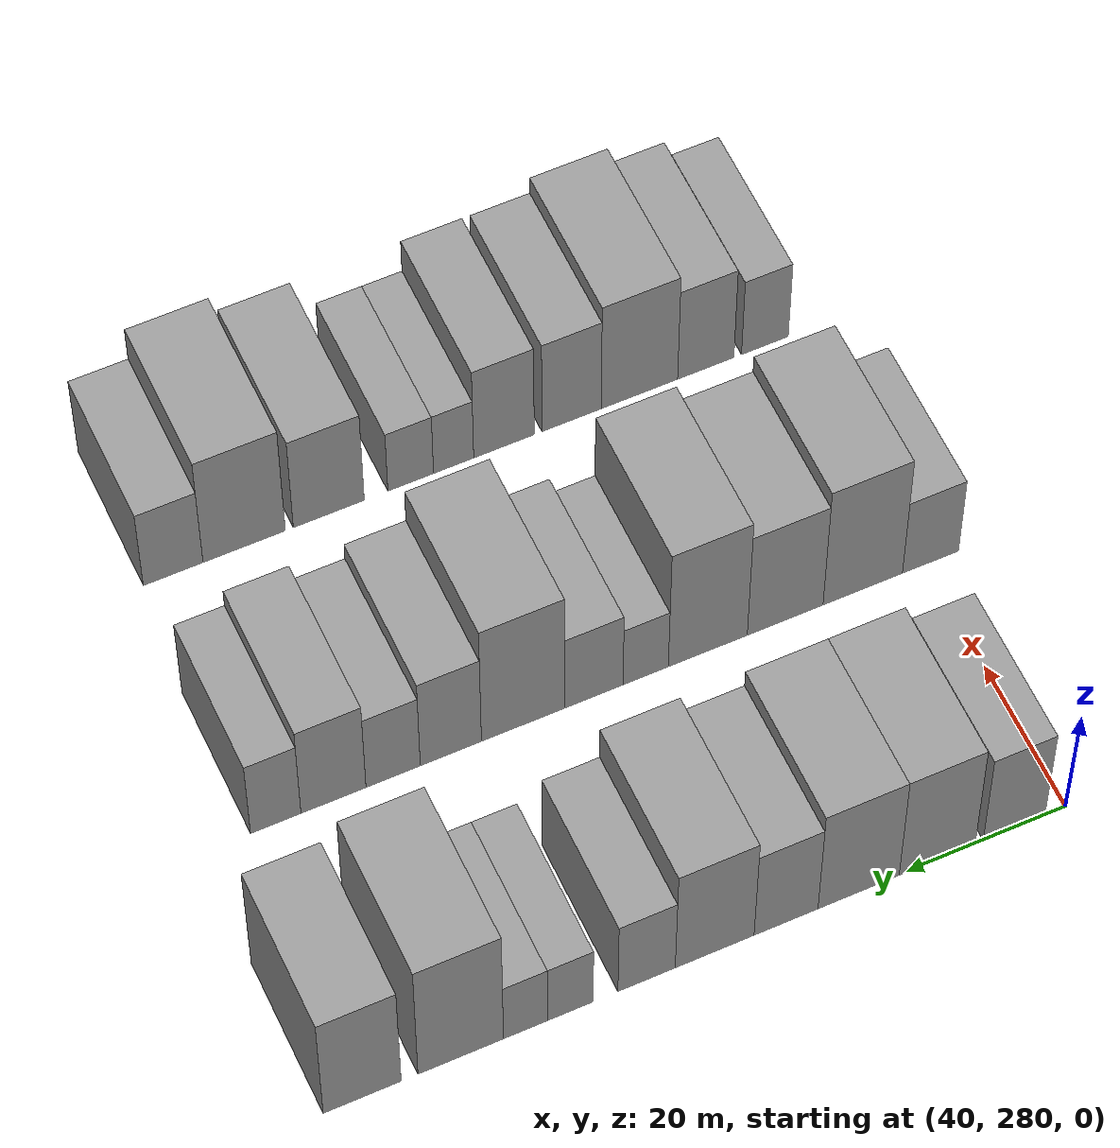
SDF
<sdf version="1.6">
 <world name="default">
  <model name="building_69">
   <static>1</static>
   <pose>50.0000 286.6164 0 0.000000 0.000000 0.000000</pose>
   <link name="link">
    <pose>0 0 9.00 0 0 0</pose>
    <collision name="collision"><geometry><box><size>20.0000 7.7567 18.0000</size></box></geometry></collision>
    <visual name="visual">
     <cast_shadows>0</cast_shadows>
     <geometry><box><size>20.0000 7.7567 18.0000</size></box></geometry>
     <material>
      <script>
       <uri>model://grey_wall/materials/scripts</uri>
       <uri>model://grey_wall/materials/textures</uri>
       <name>vrc/grey_wall</name>
      </script>
     </material>
    </visual>
   </link>
  </model>
  <model name="building_70">
   <static>1</static>
   <pose>50.0000 296.2404 0 0.000000 0.000000 0.000000</pose>
   <link name="link">
    <pose>0 0 10.50 0 0 0</pose>
    <collision name="collision"><geometry><box><size>20.0000 9.4913 21.0000</size></box></geometry></collision>
    <visual name="visual">
     <cast_shadows>0</cast_shadows>
     <geometry><box><size>20.0000 9.4913 21.0000</size></box></geometry>
     <material>
      <script>
       <uri>model://grey_wall/materials/scripts</uri>
       <uri>model://grey_wall/materials/textures</uri>
       <name>vrc/grey_wall</name>
      </script>
     </material>
    </visual>
   </link>
  </model>
  <model name="building_71">
   <static>1</static>
   <pose>50.0000 306.0205 0 0.000000 0.000000 0.000000</pose>
   <link name="link">
    <pose>0 0 10.50 0 0 0</pose>
    <collision name="collision"><geometry><box><size>20.0000 10.0688 21.0000</size></box></geometry></collision>
    <visual name="visual">
     <cast_shadows>0</cast_shadows>
     <geometry><box><size>20.0000 10.0688 21.0000</size></box></geometry>
     <material>
      <script>
       <uri>model://grey_wall/materials/scripts</uri>
       <uri>model://grey_wall/materials/textures</uri>
       <name>vrc/grey_wall</name>
      </script>
     </material>
    </visual>
   </link>
  </model>
  <model name="building_72">
   <static>1</static>
   <pose>50.0000 314.9891 0 0.000000 0.000000 0.000000</pose>
   <link name="link">
    <pose>0 0 9.00 0 0 0</pose>
    <collision name="collision"><geometry><box><size>20.0000 7.8686 18.0000</size></box></geometry></collision>
    <visual name="visual">
     <cast_shadows>0</cast_shadows>
     <geometry><box><size>20.0000 7.8686 18.0000</size></box></geometry>
     <material>
      <script>
       <uri>model://grey_wall/materials/scripts</uri>
       <uri>model://grey_wall/materials/textures</uri>
       <name>vrc/grey_wall</name>
      </script>
     </material>
    </visual>
   </link>
  </model>
  <model name="building_73">
   <static>1</static>
   <pose>50.0000 323.7444 0 0.000000 0.000000 0.000000</pose>
   <link name="link">
    <pose>0 0 10.50 0 0 0</pose>
    <collision name="collision"><geometry><box><size>20.0000 9.6419 21.0000</size></box></geometry></collision>
    <visual name="visual">
     <cast_shadows>0</cast_shadows>
     <geometry><box><size>20.0000 9.6419 21.0000</size></box></geometry>
     <material>
      <script>
       <uri>model://grey_wall/materials/scripts</uri>
       <uri>model://grey_wall/materials/textures</uri>
       <name>vrc/grey_wall</name>
      </script>
     </material>
    </visual>
   </link>
  </model>
  <model name="building_74">
   <static>1</static>
   <pose>50.0000 332.0503 0 0.000000 0.000000 0.000000</pose>
   <link name="link">
    <pose>0 0 7.50 0 0 0</pose>
    <collision name="collision"><geometry><box><size>20.0000 6.9699 15.0000</size></box></geometry></collision>
    <visual name="visual">
     <cast_shadows>0</cast_shadows>
     <geometry><box><size>20.0000 6.9699 15.0000</size></box></geometry>
     <material>
      <script>
       <uri>model://grey_wall/materials/scripts</uri>
       <uri>model://grey_wall/materials/textures</uri>
       <name>vrc/grey_wall</name>
      </script>
     </material>
    </visual>
   </link>
  </model>
  <model name="building_75">
   <static>1</static>
   <pose>50.0000 341.2771 0 0.000000 0.000000 0.000000</pose>
   <link name="link">
    <pose>0 0 6.00 0 0 0</pose>
    <collision name="collision"><geometry><box><size>20.0000 5.4839 12.0000</size></box></geometry></collision>
    <visual name="visual">
     <cast_shadows>0</cast_shadows>
     <geometry><box><size>20.0000 5.4839 12.0000</size></box></geometry>
     <material>
      <script>
       <uri>model://grey_wall/materials/scripts</uri>
       <uri>model://grey_wall/materials/textures</uri>
       <name>vrc/grey_wall</name>
      </script>
     </material>
    </visual>
   </link>
  </model>
  <model name="building_76">
   <static>1</static>
   <pose>50.0000 346.6752 0 0.000000 0.000000 0.000000</pose>
   <link name="link">
    <pose>0 0 6.00 0 0 0</pose>
    <collision name="collision"><geometry><box><size>20.0000 5.3123 12.0000</size></box></geometry></collision>
    <visual name="visual">
     <cast_shadows>0</cast_shadows>
     <geometry><box><size>20.0000 5.3123 12.0000</size></box></geometry>
     <material>
      <script>
       <uri>model://grey_wall/materials/scripts</uri>
       <uri>model://grey_wall/materials/textures</uri>
       <name>vrc/grey_wall</name>
      </script>
     </material>
    </visual>
   </link>
  </model>
  <model name="building_77">
   <static>1</static>
   <pose>50.0000 354.4404 0 0.000000 0.000000 0.000000</pose>
   <link name="link">
    <pose>0 0 12.00 0 0 0</pose>
    <collision name="collision"><geometry><box><size>20.0000 10.2181 24.0000</size></box></geometry></collision>
    <visual name="visual">
     <cast_shadows>0</cast_shadows>
     <geometry><box><size>20.0000 10.2181 24.0000</size></box></geometry>
     <material>
      <script>
       <uri>model://grey_wall/materials/scripts</uri>
       <uri>model://grey_wall/materials/textures</uri>
       <name>vrc/grey_wall</name>
      </script>
     </material>
    </visual>
   </link>
  </model>
  <model name="building_78">
   <static>1</static>
   <pose>50.0000 366.1686 0 0.000000 0.000000 0.000000</pose>
   <link name="link">
    <pose>0 0 10.50 0 0 0</pose>
    <collision name="collision"><geometry><box><size>20.0000 9.2383 21.0000</size></box></geometry></collision>
    <visual name="visual">
     <cast_shadows>0</cast_shadows>
     <geometry><box><size>20.0000 9.2383 21.0000</size></box></geometry>
     <material>
      <script>
       <uri>model://grey_wall/materials/scripts</uri>
       <uri>model://grey_wall/materials/textures</uri>
       <name>vrc/grey_wall</name>
      </script>
     </material>
    </visual>
   </link>
  </model>
  <model name="building_153">
   <static>1</static>
   <pose>85.0000 279.4177 0 0.000000 0.000000 0.000000</pose>
   <link name="link">
    <pose>0 0 7.50 0 0 0</pose>
    <collision name="collision"><geometry><box><size>20.0000 7.2368 15.0000</size></box></geometry></collision>
    <visual name="visual">
     <cast_shadows>0</cast_shadows>
     <geometry><box><size>20.0000 7.2368 15.0000</size></box></geometry>
     <material>
      <script>
       <uri>model://grey_wall/materials/scripts</uri>
       <uri>model://grey_wall/materials/textures</uri>
       <name>vrc/grey_wall</name>
      </script>
     </material>
    </visual>
   </link>
  </model>
  <model name="building_154">
   <static>1</static>
   <pose>85.0000 288.1340 0 0.000000 0.000000 0.000000</pose>
   <link name="link">
    <pose>0 0 12.00 0 0 0</pose>
    <collision name="collision"><geometry><box><size>20.0000 10.1958 24.0000</size></box></geometry></collision>
    <visual name="visual">
     <cast_shadows>0</cast_shadows>
     <geometry><box><size>20.0000 10.1958 24.0000</size></box></geometry>
     <material>
      <script>
       <uri>model://grey_wall/materials/scripts</uri>
       <uri>model://grey_wall/materials/textures</uri>
       <name>vrc/grey_wall</name>
      </script>
     </material>
    </visual>
   </link>
  </model>
  <model name="building_155">
   <static>1</static>
   <pose>85.0000 298.0592 0 0.000000 0.000000 0.000000</pose>
   <link name="link">
    <pose>0 0 10.50 0 0 0</pose>
    <collision name="collision"><geometry><box><size>20.0000 9.6546 21.0000</size></box></geometry></collision>
    <visual name="visual">
     <cast_shadows>0</cast_shadows>
     <geometry><box><size>20.0000 9.6546 21.0000</size></box></geometry>
     <material>
      <script>
       <uri>model://grey_wall/materials/scripts</uri>
       <uri>model://grey_wall/materials/textures</uri>
       <name>vrc/grey_wall</name>
      </script>
     </material>
    </visual>
   </link>
  </model>
  <model name="building_156">
   <static>1</static>
   <pose>85.0000 307.8840 0 0.000000 0.000000 0.000000</pose>
   <link name="link">
    <pose>0 0 12.00 0 0 0</pose>
    <collision name="collision"><geometry><box><size>20.0000 9.9949 24.0000</size></box></geometry></collision>
    <visual name="visual">
     <cast_shadows>0</cast_shadows>
     <geometry><box><size>20.0000 9.9949 24.0000</size></box></geometry>
     <material>
      <script>
       <uri>model://grey_wall/materials/scripts</uri>
       <uri>model://grey_wall/materials/textures</uri>
       <name>vrc/grey_wall</name>
      </script>
     </material>
    </visual>
   </link>
  </model>
  <model name="building_157">
   <static>1</static>
   <pose>85.0000 315.7359 0 0.000000 0.000000 0.000000</pose>
   <link name="link">
    <pose>0 0 6.00 0 0 0</pose>
    <collision name="collision"><geometry><box><size>20.0000 5.7089 12.0000</size></box></geometry></collision>
    <visual name="visual">
     <cast_shadows>0</cast_shadows>
     <geometry><box><size>20.0000 5.7089 12.0000</size></box></geometry>
     <material>
      <script>
       <uri>model://grey_wall/materials/scripts</uri>
       <uri>model://grey_wall/materials/textures</uri>
       <name>vrc/grey_wall</name>
      </script>
     </material>
    </visual>
   </link>
  </model>
  <model name="building_158">
   <static>1</static>
   <pose>85.0000 322.2467 0 0.000000 0.000000 0.000000</pose>
   <link name="link">
    <pose>0 0 7.50 0 0 0</pose>
    <collision name="collision"><geometry><box><size>20.0000 7.3128 15.0000</size></box></geometry></collision>
    <visual name="visual">
     <cast_shadows>0</cast_shadows>
     <geometry><box><size>20.0000 7.3128 15.0000</size></box></geometry>
     <material>
      <script>
       <uri>model://grey_wall/materials/scripts</uri>
       <uri>model://grey_wall/materials/textures</uri>
       <name>vrc/grey_wall</name>
      </script>
     </material>
    </visual>
   </link>
  </model>
  <model name="building_159">
   <static>1</static>
   <pose>85.0000 331.0689 0 0.000000 0.000000 0.000000</pose>
   <link name="link">
    <pose>0 0 12.00 0 0 0</pose>
    <collision name="collision"><geometry><box><size>20.0000 10.3315 24.0000</size></box></geometry></collision>
    <visual name="visual">
     <cast_shadows>0</cast_shadows>
     <geometry><box><size>20.0000 10.3315 24.0000</size></box></geometry>
     <material>
      <script>
       <uri>model://grey_wall/materials/scripts</uri>
       <uri>model://grey_wall/materials/textures</uri>
       <name>vrc/grey_wall</name>
      </script>
     </material>
    </visual>
   </link>
  </model>
  <model name="building_160">
   <static>1</static>
   <pose>85.0000 340.0118 0 0.000000 0.000000 0.000000</pose>
   <link name="link">
    <pose>0 0 9.00 0 0 0</pose>
    <collision name="collision"><geometry><box><size>20.0000 7.5541 18.0000</size></box></geometry></collision>
    <visual name="visual">
     <cast_shadows>0</cast_shadows>
     <geometry><box><size>20.0000 7.5541 18.0000</size></box></geometry>
     <material>
      <script>
       <uri>model://grey_wall/materials/scripts</uri>
       <uri>model://grey_wall/materials/textures</uri>
       <name>vrc/grey_wall</name>
      </script>
     </material>
    </visual>
   </link>
  </model>
  <model name="building_161">
   <static>1</static>
   <pose>85.0000 347.1262 0 0.000000 0.000000 0.000000</pose>
   <link name="link">
    <pose>0 0 7.50 0 0 0</pose>
    <collision name="collision"><geometry><box><size>20.0000 6.6747 15.0000</size></box></geometry></collision>
    <visual name="visual">
     <cast_shadows>0</cast_shadows>
     <geometry><box><size>20.0000 6.6747 15.0000</size></box></geometry>
     <material>
      <script>
       <uri>model://grey_wall/materials/scripts</uri>
       <uri>model://grey_wall/materials/textures</uri>
       <name>vrc/grey_wall</name>
      </script>
     </material>
    </visual>
   </link>
  </model>
  <model name="building_162">
   <static>1</static>
   <pose>85.0000 354.4357 0 0.000000 0.000000 0.000000</pose>
   <link name="link">
    <pose>0 0 9.00 0 0 0</pose>
    <collision name="collision"><geometry><box><size>20.0000 7.9442 18.0000</size></box></geometry></collision>
    <visual name="visual">
     <cast_shadows>0</cast_shadows>
     <geometry><box><size>20.0000 7.9442 18.0000</size></box></geometry>
     <material>
      <script>
       <uri>model://grey_wall/materials/scripts</uri>
       <uri>model://grey_wall/materials/textures</uri>
       <name>vrc/grey_wall</name>
      </script>
     </material>
    </visual>
   </link>
  </model>
  <model name="building_163">
   <static>1</static>
   <pose>85.0000 361.4779 0 0.000000 0.000000 0.000000</pose>
   <link name="link">
    <pose>0 0 7.50 0 0 0</pose>
    <collision name="collision"><geometry><box><size>20.0000 6.1402 15.0000</size></box></geometry></collision>
    <visual name="visual">
     <cast_shadows>0</cast_shadows>
     <geometry><box><size>20.0000 6.1402 15.0000</size></box></geometry>
     <material>
      <script>
       <uri>model://grey_wall/materials/scripts</uri>
       <uri>model://grey_wall/materials/textures</uri>
       <name>vrc/grey_wall</name>
      </script>
     </material>
    </visual>
   </link>
  </model>
  <model name="building_233">
   <static>1</static>
   <pose>120.0000 283.7048 0 0.000000 0.000000 0.000000</pose>
   <link name="link">
    <pose>0 0 7.50 0 0 0</pose>
    <collision name="collision"><geometry><box><size>20.0000 6.1366 15.0000</size></box></geometry></collision>
    <visual name="visual">
     <cast_shadows>0</cast_shadows>
     <geometry><box><size>20.0000 6.1366 15.0000</size></box></geometry>
     <material>
      <script>
       <uri>model://grey_wall/materials/scripts</uri>
       <uri>model://grey_wall/materials/textures</uri>
       <name>vrc/grey_wall</name>
      </script>
     </material>
    </visual>
   </link>
  </model>
  <model name="building_234">
   <static>1</static>
   <pose>120.0000 291.4537 0 0.000000 0.000000 0.000000</pose>
   <link name="link">
    <pose>0 0 9.00 0 0 0</pose>
    <collision name="collision"><geometry><box><size>20.0000 7.3610 18.0000</size></box></geometry></collision>
    <visual name="visual">
     <cast_shadows>0</cast_shadows>
     <geometry><box><size>20.0000 7.3610 18.0000</size></box></geometry>
     <material>
      <script>
       <uri>model://grey_wall/materials/scripts</uri>
       <uri>model://grey_wall/materials/textures</uri>
       <name>vrc/grey_wall</name>
      </script>
     </material>
    </visual>
   </link>
  </model>
  <model name="building_235">
   <static>1</static>
   <pose>120.0000 300.1061 0 0.000000 0.000000 0.000000</pose>
   <link name="link">
    <pose>0 0 10.50 0 0 0</pose>
    <collision name="collision"><geometry><box><size>20.0000 9.9438 21.0000</size></box></geometry></collision>
    <visual name="visual">
     <cast_shadows>0</cast_shadows>
     <geometry><box><size>20.0000 9.9438 21.0000</size></box></geometry>
     <material>
      <script>
       <uri>model://grey_wall/materials/scripts</uri>
       <uri>model://grey_wall/materials/textures</uri>
       <name>vrc/grey_wall</name>
      </script>
     </material>
    </visual>
   </link>
  </model>
  <model name="building_236">
   <static>1</static>
   <pose>120.0000 308.8984 0 0.000000 0.000000 0.000000</pose>
   <link name="link">
    <pose>0 0 9.00 0 0 0</pose>
    <collision name="collision"><geometry><box><size>20.0000 7.6408 18.0000</size></box></geometry></collision>
    <visual name="visual">
     <cast_shadows>0</cast_shadows>
     <geometry><box><size>20.0000 7.6408 18.0000</size></box></geometry>
     <material>
      <script>
       <uri>model://grey_wall/materials/scripts</uri>
       <uri>model://grey_wall/materials/textures</uri>
       <name>vrc/grey_wall</name>
      </script>
     </material>
    </visual>
   </link>
  </model>
  <model name="building_237">
   <static>1</static>
   <pose>120.0000 317.6042 0 0.000000 0.000000 0.000000</pose>
   <link name="link">
    <pose>0 0 9.00 0 0 0</pose>
    <collision name="collision"><geometry><box><size>20.0000 7.7708 18.0000</size></box></geometry></collision>
    <visual name="visual">
     <cast_shadows>0</cast_shadows>
     <geometry><box><size>20.0000 7.7708 18.0000</size></box></geometry>
     <material>
      <script>
       <uri>model://grey_wall/materials/scripts</uri>
       <uri>model://grey_wall/materials/textures</uri>
       <name>vrc/grey_wall</name>
      </script>
     </material>
    </visual>
   </link>
  </model>
  <model name="building_238">
   <static>1</static>
   <pose>120.0000 324.0568 0 0.000000 0.000000 0.000000</pose>
   <link name="link">
    <pose>0 0 6.00 0 0 0</pose>
    <collision name="collision"><geometry><box><size>20.0000 5.1344 12.0000</size></box></geometry></collision>
    <visual name="visual">
     <cast_shadows>0</cast_shadows>
     <geometry><box><size>20.0000 5.1344 12.0000</size></box></geometry>
     <material>
      <script>
       <uri>model://grey_wall/materials/scripts</uri>
       <uri>model://grey_wall/materials/textures</uri>
       <name>vrc/grey_wall</name>
      </script>
     </material>
    </visual>
   </link>
  </model>
  <model name="building_239">
   <static>1</static>
   <pose>120.0000 329.5298 0 0.000000 0.000000 0.000000</pose>
   <link name="link">
    <pose>0 0 6.00 0 0 0</pose>
    <collision name="collision"><geometry><box><size>20.0000 5.8116 12.0000</size></box></geometry></collision>
    <visual name="visual">
     <cast_shadows>0</cast_shadows>
     <geometry><box><size>20.0000 5.8116 12.0000</size></box></geometry>
     <material>
      <script>
       <uri>model://grey_wall/materials/scripts</uri>
       <uri>model://grey_wall/materials/textures</uri>
       <name>vrc/grey_wall</name>
      </script>
     </material>
    </visual>
   </link>
  </model>
  <model name="building_240">
   <static>1</static>
   <pose>120.0000 339.9187 0 0.000000 0.000000 0.000000</pose>
   <link name="link">
    <pose>0 0 9.00 0 0 0</pose>
    <collision name="collision"><geometry><box><size>20.0000 8.9660 18.0000</size></box></geometry></collision>
    <visual name="visual">
     <cast_shadows>0</cast_shadows>
     <geometry><box><size>20.0000 8.9660 18.0000</size></box></geometry>
     <material>
      <script>
       <uri>model://grey_wall/materials/scripts</uri>
       <uri>model://grey_wall/materials/textures</uri>
       <name>vrc/grey_wall</name>
      </script>
     </material>
    </visual>
   </link>
  </model>
  <model name="building_241">
   <static>1</static>
   <pose>120.0000 350.5630 0 0.000000 0.000000 0.000000</pose>
   <link name="link">
    <pose>0 0 10.50 0 0 0</pose>
    <collision name="collision"><geometry><box><size>20.0000 10.3227 21.0000</size></box></geometry></collision>
    <visual name="visual">
     <cast_shadows>0</cast_shadows>
     <geometry><box><size>20.0000 10.3227 21.0000</size></box></geometry>
     <material>
      <script>
       <uri>model://grey_wall/materials/scripts</uri>
       <uri>model://grey_wall/materials/textures</uri>
       <name>vrc/grey_wall</name>
      </script>
     </material>
    </visual>
   </link>
  </model>
  <model name="building_242">
   <static>1</static>
   <pose>120.0000 359.4457 0 0.000000 0.000000 0.000000</pose>
   <link name="link">
    <pose>0 0 7.50 0 0 0</pose>
    <collision name="collision"><geometry><box><size>20.0000 7.4427 15.0000</size></box></geometry></collision>
    <visual name="visual">
     <cast_shadows>0</cast_shadows>
     <geometry><box><size>20.0000 7.4427 15.0000</size></box></geometry>
     <material>
      <script>
       <uri>model://grey_wall/materials/scripts</uri>
       <uri>model://grey_wall/materials/textures</uri>
       <name>vrc/grey_wall</name>
      </script>
     </material>
    </visual>
   </link>
  </model>
 </world>
</sdf>
